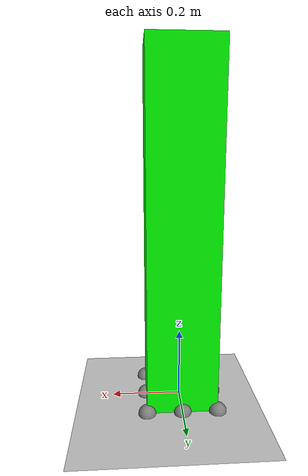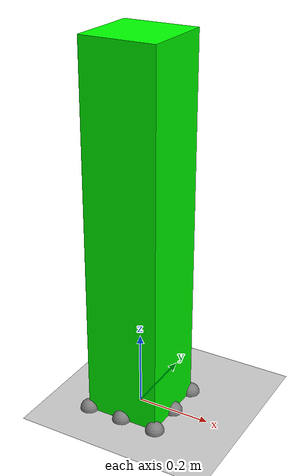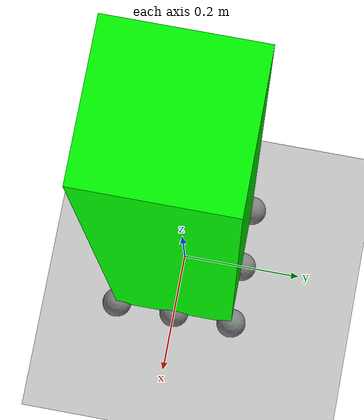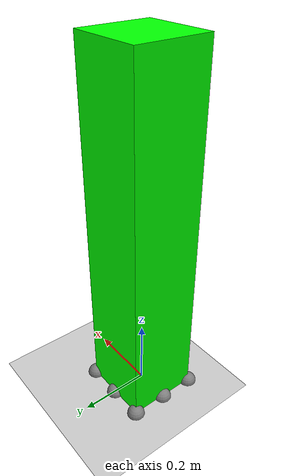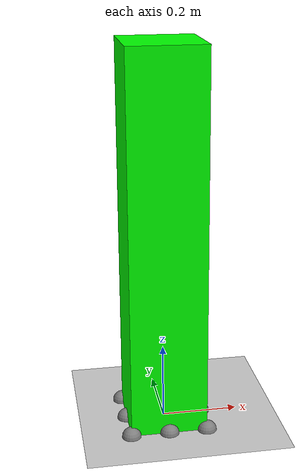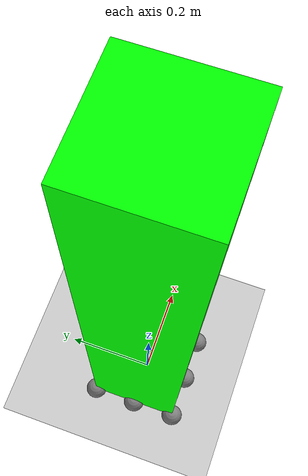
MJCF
<mujoco model="simple_box">
  <option timestep="0.002" />

  <default>
    <!-- Softer, slightly elastic contacts to reduce sensor spikes -->
    <geom solref="0.03 1.0" solimp="0.5 0.99 0.003 0.5 2" margin="0.002" friction="2.5 0.4 0.02" density="1000"/>

  </default>

  <worldbody>
    <light diffuse=".5 .5 .5" pos="0 0 3" dir="0 0 -1"/>
  <geom name="ground" type="plane" size="5 5 0.1" rgba="0.8 0.8 0.8 1"/>

  <body name="box_body" pos="0 0 0.5">
      <joint type="free"/>
  <geom name="box_geom" type="box" size="0.1 0.1 0.5" rgba="0 1 0 1" mass="1"/>

  <!-- 3x3 sensor grid on bottom face (x from -0.1 to +0.1, y from +0.1 to -0.1) -->
  <site name="site_m1_p1" pos="-0.1 0.1 -0.5" size="0.025" rgba="0.5 0.5 0.5 1"/>
  <site name="site_m1_0"  pos="-0.1 0.0 -0.5" size="0.025" rgba="0.5 0.5 0.5 1"/>
  <site name="site_m1_m1" pos="-0.1 -0.1 -0.5" size="0.025" rgba="0.5 0.5 0.5 1"/>

  <site name="site_0_p1"  pos="0.0 0.1 -0.5" size="0.025" rgba="0.5 0.5 0.5 1"/>
  <site name="site_0_0"   pos="0.0 0.0 -0.5" size="0.025" rgba="0.5 0.5 0.5 1"/>
  <site name="site_0_m1"  pos="0.0 -0.1 -0.5" size="0.025" rgba="0.5 0.5 0.5 1"/>

  <site name="site_p1_p1" pos="0.1 0.1 -0.5" size="0.025" rgba="0.5 0.5 0.5 1"/>
  <site name="site_p1_0"  pos="0.1 0.0 -0.5" size="0.025" rgba="0.5 0.5 0.5 1"/>
  <site name="site_p1_m1" pos="0.1 -0.1 -0.5" size="0.025" rgba="0.5 0.5 0.5 1"/>

  <!-- tiny contact geoms colocated with the 3x3 sites so each site can produce a contact -->
  <!-- Column x = -0.1 (left): top->bottom -->
  <geom name="touch_m1_p1" type="sphere" pos="-0.1 0.1 -0.5" size="0.0125" rgba="0.5 0.5 0.5 1" contype="1" conaffinity="1"/>
  <geom name="touch_m1_0"  type="sphere" pos="-0.1 0.0 -0.5" size="0.0125" rgba="0.5 0.5 0.5 1" contype="1" conaffinity="1"/>
  <geom name="touch_m1_m1" type="sphere" pos="-0.1 -0.1 -0.5" size="0.0125" rgba="0.5 0.5 0.5 1" contype="1" conaffinity="1"/>

  <!-- Column x = 0 (middle): top->bottom -->
  <geom name="touch_0_p1"  type="sphere" pos="0.0 0.1 -0.5" size="0.0125" rgba="0.5 0.5 0.5 1" contype="1" conaffinity="1"/>
  <geom name="touch_0_0"   type="sphere" pos="0.0 0.0 -0.5" size="0.0125" rgba="0.5 0.5 0.5 1" contype="1" conaffinity="1"/>
  <geom name="touch_0_m1"  type="sphere" pos="0.0 -0.1 -0.5" size="0.0125" rgba="0.5 0.5 0.5 1" contype="1" conaffinity="1"/>

  <!-- Column x = +0.1 (right): top->bottom -->
  <geom name="touch_p1_p1" type="sphere" pos="0.1 0.1 -0.5" size="0.0125" rgba="0.5 0.5 0.5 1" contype="1" conaffinity="1"/>
  <geom name="touch_p1_0"  type="sphere" pos="0.1 0.0 -0.5" size="0.0125" rgba="0.5 0.5 0.5 1" contype="1" conaffinity="1"/>
  <geom name="touch_p1_m1" type="sphere" pos="0.1 -0.1 -0.5" size="0.0125" rgba="0.5 0.5 0.5 1" contype="1" conaffinity="1"/>
    </body>
  </worldbody>

  <sensor>
    <!-- Use touch sensors (scalar contact pressure) referencing the small contact geoms -->
  <!-- Column x = -0.1 (left): top->bottom -->
  <touch name="sensor_m1_p1" site="site_m1_p1" cutoff="12"/>
  <touch name="sensor_m1_0"  site="site_m1_0" cutoff="12"/>
  <touch name="sensor_m1_m1" site="site_m1_m1" cutoff="12"/>

  <!-- Column x = 0 (middle): top->bottom -->
  <touch name="sensor_0_p1"  site="site_0_p1" cutoff="12"/>
  <touch name="sensor_0_0"   site="site_0_0" cutoff="12"/>
  <touch name="sensor_0_m1"  site="site_0_m1" cutoff="12"/>

  <!-- Column x = +0.1 (right): top->bottom -->
  <touch name="sensor_p1_p1" site="site_p1_p1" cutoff="12"/>
  <touch name="sensor_p1_0"  site="site_p1_0" cutoff="12"/>
  <touch name="sensor_p1_m1" site="site_p1_m1" cutoff="12"/>
  </sensor>

  <actuator>
    <!-- Apply x-force as if acting at a point 0.5m above COM: generates matching torque around y -->
    <general name="force_x" body="box_body" gear="1 0 0 0 0 0"/>
    <general name="force_y" body="box_body" gear="0 1 0 0 0 0"/>
  </actuator>
</mujoco>
